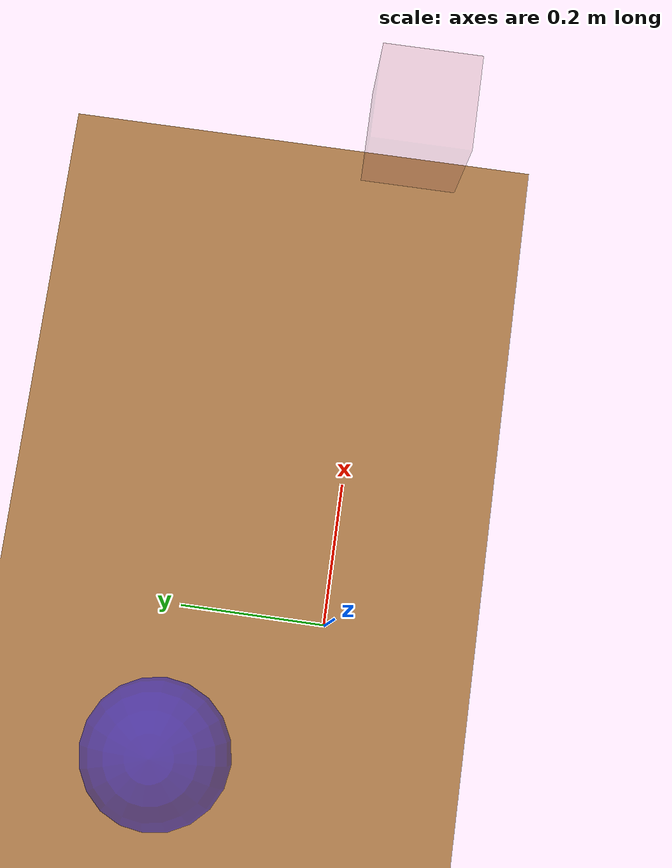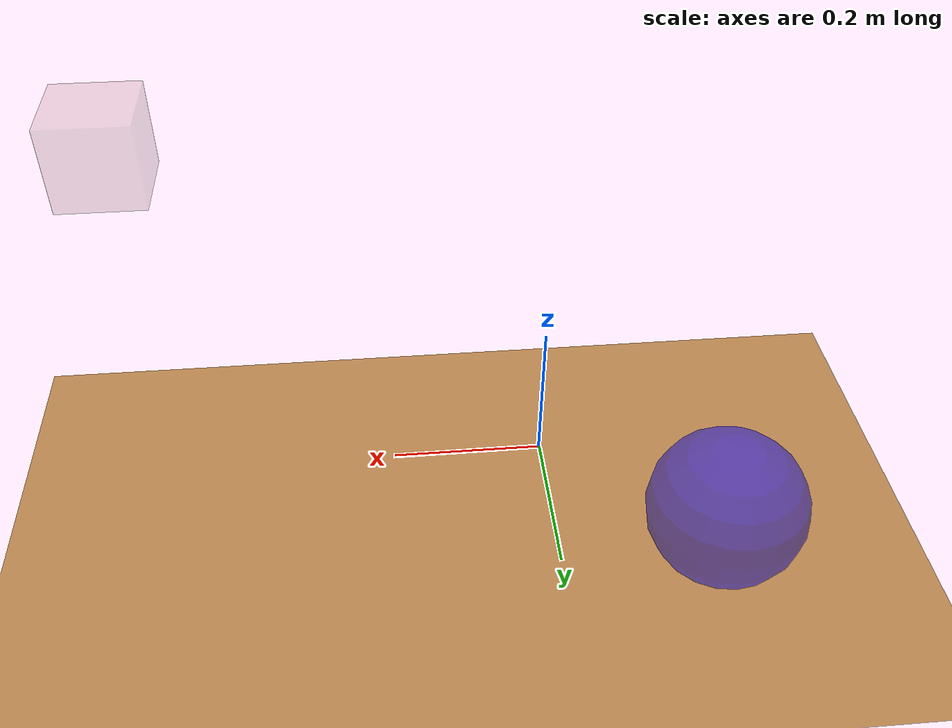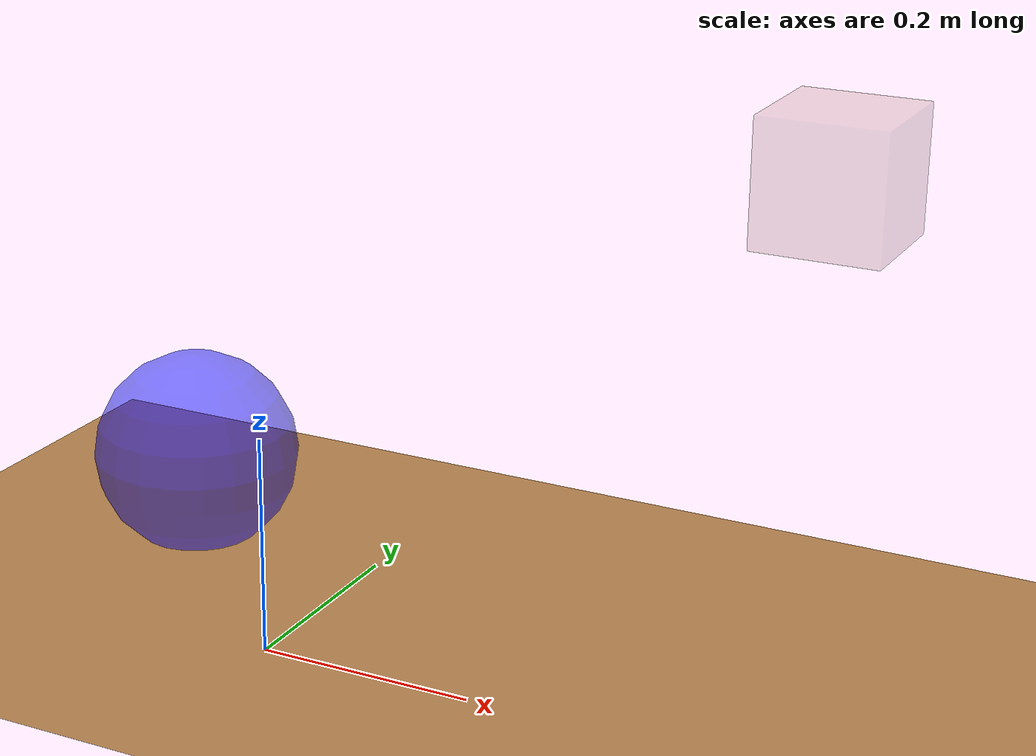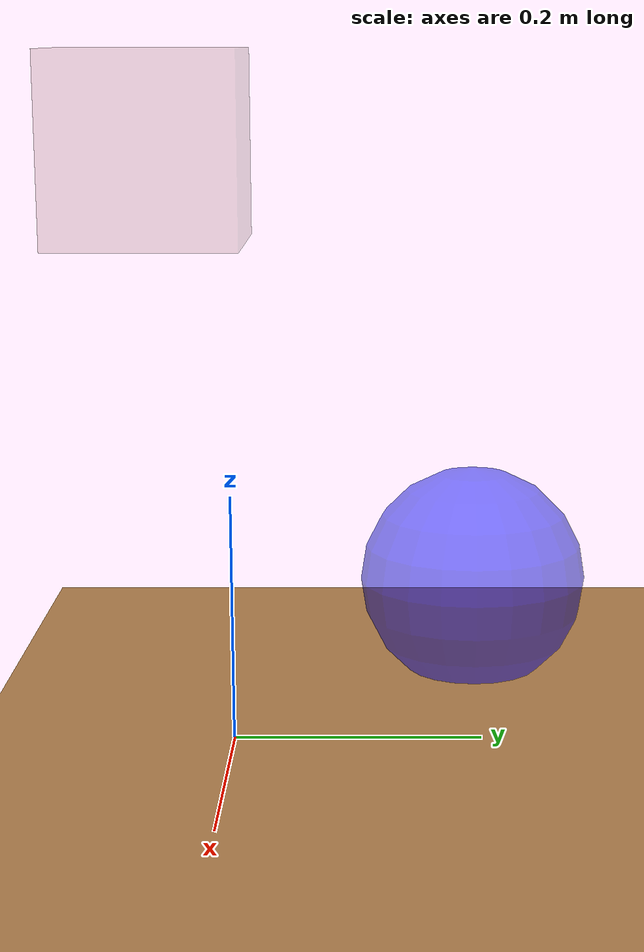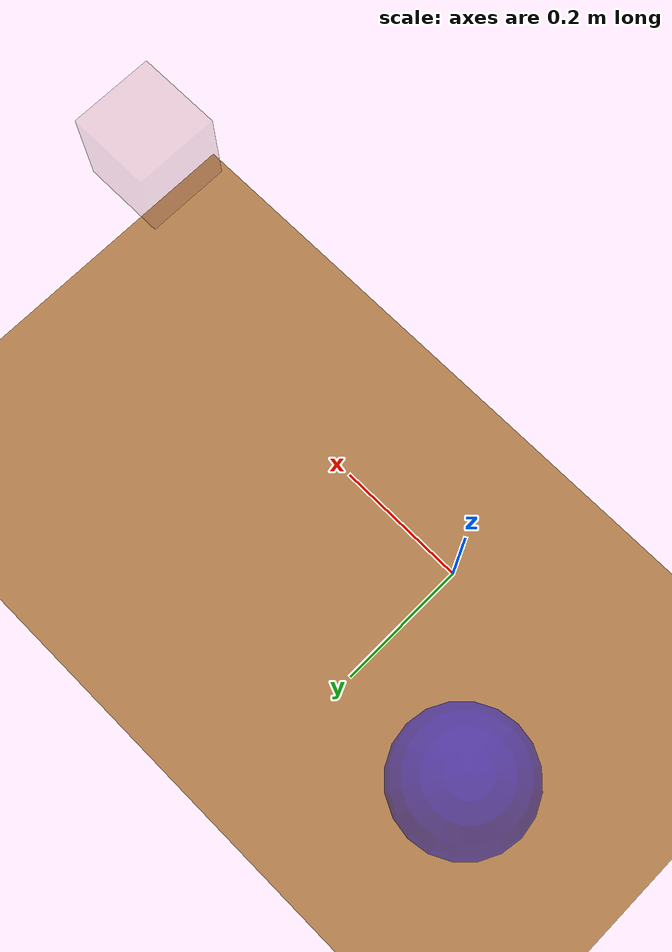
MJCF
<mujoco model="external_area">
    <asset>
        <texture builtin="gradient" height="256" rgb1="0.1 0.1 0.1" rgb2="0.2 0.2 0.2" type="skybox" width="256"/>
        <mesh name="table" file="./unknow/meshes/table.obj" scale = "1.0 1.0 1.0"/>
        <texture file="./unknow/textures/light-wood.png" type="2d" name="tex-light-wood"/>
        <material name="light-wood" reflectance="0" texrepeat="15 15" texture="tex-light-wood" texuniform="true"/>
    </asset>
  <option impratio="20" cone="elliptic" density="1.2" viscosity="0.00002"/>
  <size nconmax="5000" njmax="5000"/>
    <worldbody>
        <geom condim="3" group="1" name="floor" pos="-0.6 0.6 0" material="light-wood" size="1.31 0.53 .1" type="plane" quat="0.924 0 0 0.383"/>
        <body name="table" pos="0 0 0" quat="1 0 0 0">
            <geom condim="3" group="1" name="ur_table" pos="0 0 0" rgba="0.2 0.2 0.2 1" size="0.31 0.31 .1" quat="0.924 0 0 0.383" type="plane"/>
        </body>
        <body name="camera_lookat" pos="-0.2 0.2 0.08" quat="1 0 0 0">
            <geom size="0.1" type="sphere" rgba="0 0 1 0.5" group="0" contype="2" conaffinity="2"/>
        </body>
        <camera name="birdview" pos="-0.9 -0.0 0.5" mode="targetbody" target="camera_lookat" fovy="76.22424707826806" />
        <camera name="rightview" pos="-0.9 -0.0 0.08" mode="targetbody" target="camera_lookat" fovy="76.22424707826806" />
        <camera name="frontview" pos="-0.8 0.8 0.08" mode="targetbody" target="camera_lookat" fovy="76.22424707826806" />
        <body name="camera" pos="0 0 0" quat="0 1 0 0">
            <camera name="testview" pos="0 0 0" quat="1 0 0 0" mode="fixed" fovy="76.22424707826806" />
        </body>
        <body name="target" pos="0.5 0 .5" quat="0 1 0 0" mocap="true">
            <geom type="box" size=".05 .05 .05" contype="0" conaffinity="0" rgba=".6 .3 .3 .2"/>
        </body>
        <light name="light1" diffuse=".8 .8 .8" dir="0 -.15 -1" directional="false" pos="1 1 4.0" specular="0.3 0.3 0.3" castshadow="false"/>
        <light name="light2" diffuse=".8 .8 .8" dir="0 -.15 -1" directional="false" pos="-3. -3. 4.0" specular="0.3 0.3 0.3" castshadow="false"/>
    </worldbody>

    <visual>
        <global offwidth="2048" offheight="1536"/>
    </visual>

</mujoco>
